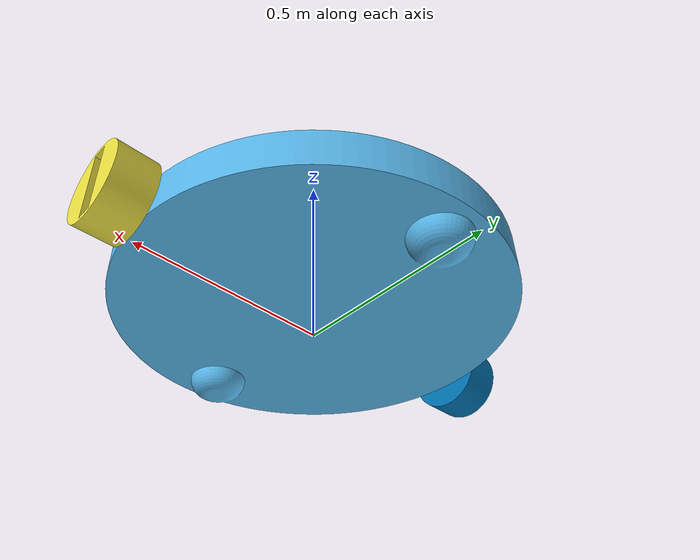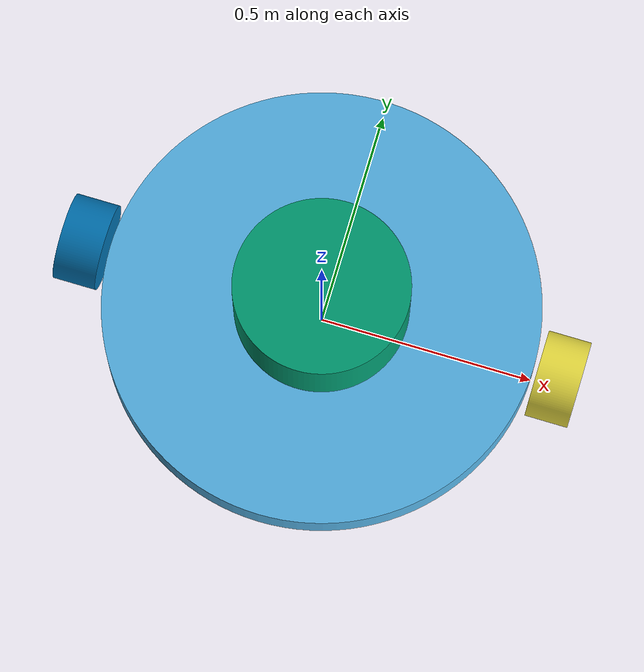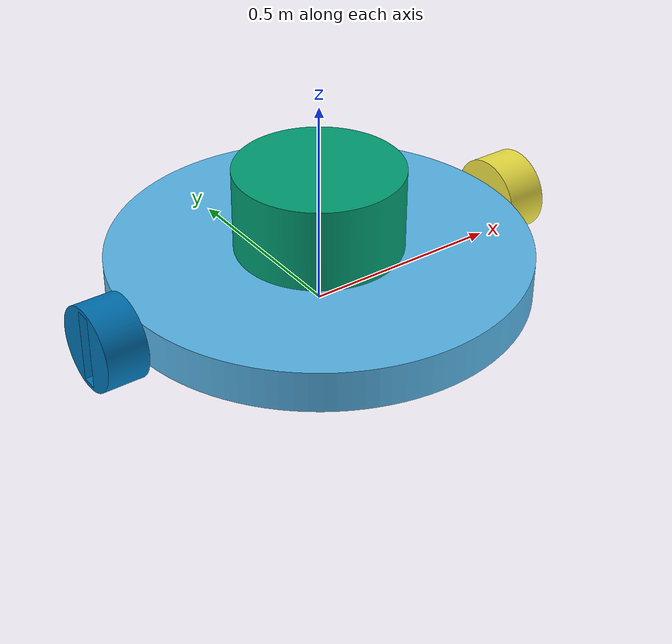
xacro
<?xml version="1.0"?>

<robot name="dd_robot">
    <link name="world">

    </link>

    <link name="base">
        <inertial>
            <origin xyz="0.0 0.0 0.05" rpy="0.0 0.0 1.57"/>
            <mass value="1.0"/>
            <inertia ixx="4.079E+05" ixy="3.570E-10" ixz="-3.018E-07" iyy="3.911E+05" iyz="-2.177E-05" izz="7.877E+05"/>
        </inertial>

        <visual>
            <origin rpy="0.0 0.0 1.57" xyz="0.0 0.0 0.05"/>
            <geometry>
                <mesh filename="package://dd_robot/mesh/DD_4.stl" scale="0.01 0.01 0.01"/>
            </geometry>
        </visual>
    </link>

    <link name="lidar">
        <inertial>
            <origin xyz="0.0 0.0 0.0" rpy="0.0 0.0 0.0"/>
            <mass value="1.0"/>
            <inertia ixx="26305.599" ixy="0.0" ixz="0.0" iyy="26305.604" iyz="0.0" izz="39458.401"/>
        </inertial>

        <visual>
            <origin rpy="0.0 0.0 0.0" xyz="0.0 0.0 0.0"/>
            <geometry>
                <mesh filename="package://dd_robot/mesh/Lidar_2.stl" scale="0.01 0.01 0.01"/>
            </geometry>
        </visual>
    </link>

    <link name="wheel1">
        <inertial>
            <origin xyz="0.0 0.0 0.0" rpy="0.0 0.0 0.0"/>
            <mass value="1.0"/>
            <inertia ixx="1233.075" ixy="0.0" ixz="0.0" iyy="822.05" iyz="0.0" izz="822.05"/>
        </inertial>

        <visual>
            <origin rpy="0.0 0.0 0.0" xyz="0.0 0.0 0.0"/>
            <geometry>
                <mesh filename="package://dd_robot/mesh/Wheel4_R.stl" scale="0.01 0.01 0.01"/>
            </geometry>
        </visual>
    </link>

    <link name="wheel2">
        <inertial>
            <origin xyz="0.0 0.0 0.0" rpy="0.0 0.0 0.0"/>
            <mass value="1.0"/>
            <inertia ixx="1233.075" ixy="0.0" ixz="0.0" iyy="822.05" iyz="0.0" izz="822.05"/>
        </inertial>

        <visual>
            <origin rpy="0.0 0.0 0.0" xyz="0.0 0.0 0.0"/>
            <geometry>
                <mesh filename="package://dd_robot/mesh/Wheel4_L.stl" scale="0.01 0.01 0.01"/>
            </geometry>
        </visual>
    </link>

    <joint name="virtual" type="fixed">
        <parent link="world"/>
        <child link="base"/>
        <origin rpy="0.0 0.0 0.0" xyz="0.0 0.0 0.0"/>
    </joint>

    <joint name="lidar_j" type="fixed">
        <parent link="base"/>
        <child link="lidar"/>
        <origin rpy="0.0 0.0 0.0" xyz="0.0 0.0 0.15"/>
    </joint>

    <joint name="joint1" type="revolute">
        <parent link="base"/>
        <child link="wheel1"/>
        <origin rpy="0.0 0.0 0.0" xyz="0.51 0.0 0.1"/>
        <axis xyz="1.0 0.0 0.0"/>
        <limit lower="-3.14" upper="3.14" effort="1.0" velocity="0.5"/>
    </joint>

    <joint name="joint2" type="revolute">
        <parent link="base"/>
        <child link="wheel2"/>
        <origin rpy="0.0 0.0 0.0" xyz="-0.51 0.0 0.1"/>
        <axis xyz="1.0 0.0 0.0"/>
        <limit lower="-3.14" upper="3.14" effort="1.0" velocity="0.5"/>
    </joint>
</robot>
